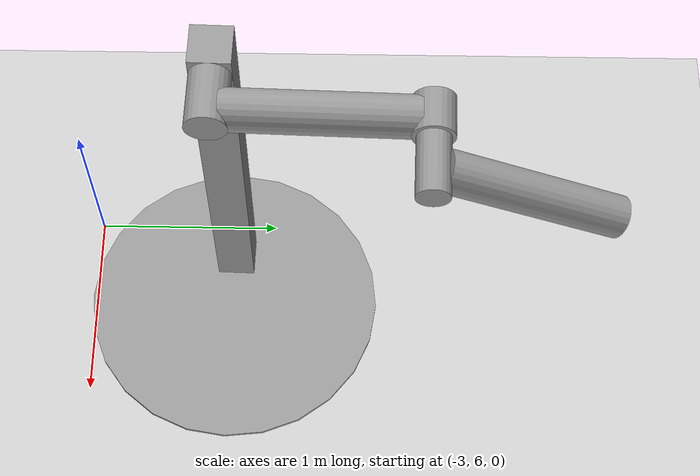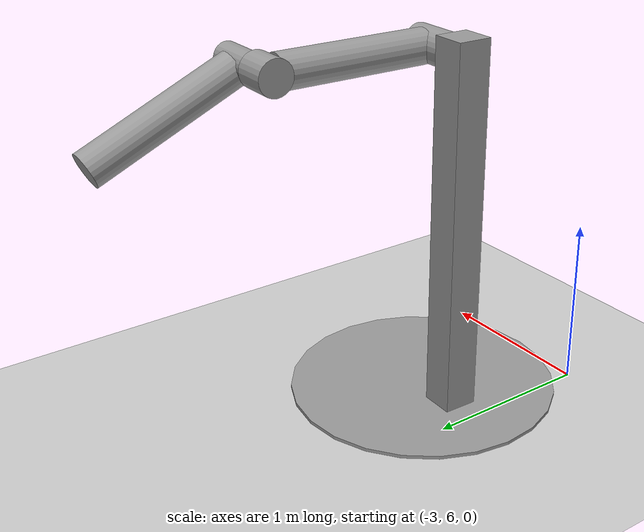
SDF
<sdf version="1.6">
 <world name="default">
  <model name="ground_plane">
   <static>1</static>
   <link name="link">
    <collision name="collision">
     <geometry><plane><normal>0 0 1</normal><size>100 100</size></plane></geometry>
     <surface><friction><ode><mu>100</mu><mu2>50</mu2></ode></friction></surface>
    </collision>
    <visual name="visual">
     <cast_shadows>0</cast_shadows>
     <geometry><plane><normal>0 0 1</normal><size>100 100</size></plane></geometry>
     <material>
      <script><uri>file://media/materials/scripts/gazebo.material</uri><name>Gazebo/Grey</name></script>
     </material>
    </visual>
   </link>
  </model>
  <model name="double_pendulum_with_base">
   <link name="base">
    <inertial>
     <mass>100</mass>
     <inertia><ixx>1</ixx><ixy>0</ixy><ixz>0</ixz><iyy>1</iyy><iyz>0</iyz><izz>1</izz></inertia>
    </inertial>
    <visual name="vis_plate_on_ground">
     <pose>0 0 0.01 0 -0 0</pose>
     <geometry><cylinder><radius>0.8</radius><length>0.02</length></cylinder></geometry>
     <material>
      <script><uri>file://media/materials/scripts/gazebo.material</uri><name>Gazebo/Grey</name></script>
     </material>
    </visual>
    <visual name="vis_pole">
     <pose>-0.275 0 1.1 0 -0 0</pose>
     <geometry><box><size>0.2 0.2 2.2</size></box></geometry>
     <material>
      <script><uri>file://media/materials/scripts/gazebo.material</uri><name>Gazebo/Grey</name></script>
     </material>
    </visual>
    <collision name="col_plate_on_ground">
     <pose>0 0 0.01 0 -0 0</pose>
     <geometry><cylinder><radius>0.8</radius><length>0.02</length></cylinder></geometry>
    </collision>
    <collision name="col_pole">
     <pose>-0.275 0 1.1 0 -0 0</pose>
     <geometry><box><size>0.2 0.2 2.2</size></box></geometry>
    </collision>
   </link>
   <link name="upper_link">
    <pose>0 0 2.1 -1.5708 0 0</pose>
    <inertial>
     <pose>0 0 0.5 0 -0 0</pose>
     <inertia><ixx>1</ixx><ixy>0</ixy><ixz>0</ixz><iyy>1</iyy><iyz>0</iyz><izz>1</izz></inertia>
     <mass>1</mass>
    </inertial>
    <visual name="vis_upper_joint">
     <pose>-0.05 0 0 3.14159 1.57079 3.14159</pose>
     <geometry><cylinder><radius>0.1</radius><length>0.3</length></cylinder></geometry>
     <material>
      <script><uri>file://media/materials/scripts/gazebo.material</uri><name>Gazebo/Grey</name></script>
     </material>
    </visual>
    <visual name="vis_lower_joint">
     <pose>0 0 1 3.14159 1.57079 3.14159</pose>
     <geometry><cylinder><radius>0.1</radius><length>0.2</length></cylinder></geometry>
     <material>
      <script><uri>file://media/materials/scripts/gazebo.material</uri><name>Gazebo/Grey</name></script>
     </material>
    </visual>
    <visual name="vis_cylinder">
     <pose>0 0 0.5 0 -0 0</pose>
     <geometry><cylinder><radius>0.1</radius><length>0.9</length></cylinder></geometry>
     <material>
      <script><uri>file://media/materials/scripts/gazebo.material</uri><name>Gazebo/Grey</name></script>
     </material>
    </visual>
    <collision name="col_upper_joint">
     <pose>-0.05 0 0 3.14159 1.57079 3.14159</pose>
     <geometry><cylinder><radius>0.1</radius><length>0.3</length></cylinder></geometry>
    </collision>
    <collision name="col_lower_joint">
     <pose>0 0 1 3.14159 1.57079 3.14159</pose>
     <geometry><cylinder><radius>0.1</radius><length>0.2</length></cylinder></geometry>
    </collision>
    <collision name="col_cylinder">
     <pose>0 0 0.5 0 -0 0</pose>
     <geometry><cylinder><radius>0.1</radius><length>0.9</length></cylinder></geometry>
    </collision>
   </link>
   <link name="lower_link">
    <pose>0.25 1 2.1 -2 0 0</pose>
    <inertial>
     <pose>0 0 0.5 0 -0 0</pose>
     <inertia><ixx>1</ixx><ixy>0</ixy><ixz>0</ixz><iyy>1</iyy><iyz>0</iyz><izz>1</izz></inertia>
     <mass>1</mass>
    </inertial>
    <visual name="vis_lower_joint">
     <pose>0 0 0 3.14159 1.57079 3.14159</pose>
     <geometry><cylinder><radius>0.08</radius><length>0.3</length></cylinder></geometry>
     <material>
      <script><uri>file://media/materials/scripts/gazebo.material</uri><name>Gazebo/Grey</name></script>
     </material>
    </visual>
    <visual name="vis_cylinder">
     <pose>0 0 0.5 0 -0 0</pose>
     <geometry><cylinder><radius>0.1</radius><length>0.9</length></cylinder></geometry>
     <material>
      <script><uri>file://media/materials/scripts/gazebo.material</uri><name>Gazebo/Grey</name></script>
     </material>
    </visual>
    <collision name="col_lower_joint">
     <pose>0 0 0 3.14159 1.57079 3.14159</pose>
     <geometry><cylinder><radius>0.08</radius><length>0.3</length></cylinder></geometry>
    </collision>
    <collision name="col_cylinder">
     <pose>0 0 0.5 0 -0 0</pose>
     <geometry><cylinder><radius>0.1</radius><length>0.9</length></cylinder></geometry>
    </collision>
   </link>
   <joint name="upper_joint" type="revolute">
    <parent>base</parent>
    <child>upper_link</child>
    <axis>
     <xyz>1 0 0</xyz>
     <use_parent_model_frame>0</use_parent_model_frame>
     <limit><lower>-1e+16</lower><upper>1e+16</upper></limit>
     <dynamics><spring_reference>0</spring_reference><spring_stiffness>0</spring_stiffness></dynamics>
    </axis>
   </joint>
   <joint name="lower_joint" type="revolute">
    <parent>upper_link</parent>
    <child>lower_link</child>
    <axis>
     <xyz>1 0 0</xyz>
     <use_parent_model_frame>0</use_parent_model_frame>
     <limit><lower>-1e+16</lower><upper>1e+16</upper></limit>
     <dynamics><spring_reference>0</spring_reference><spring_stiffness>0</spring_stiffness></dynamics>
    </axis>
   </joint>
   <pose>-2.52924 6.77712 -2e-06 -8e-06 -3e-06 -0.027999</pose>
  </model>
 </world>
</sdf>
